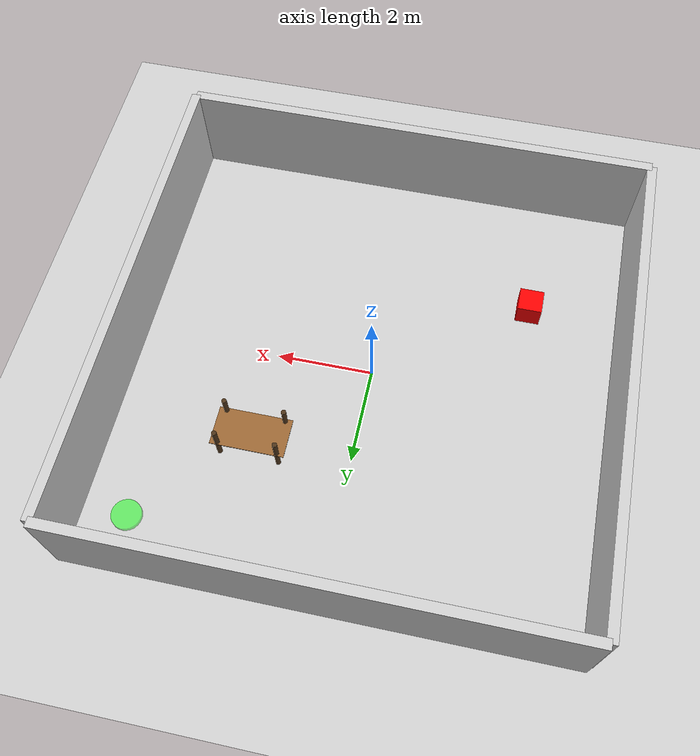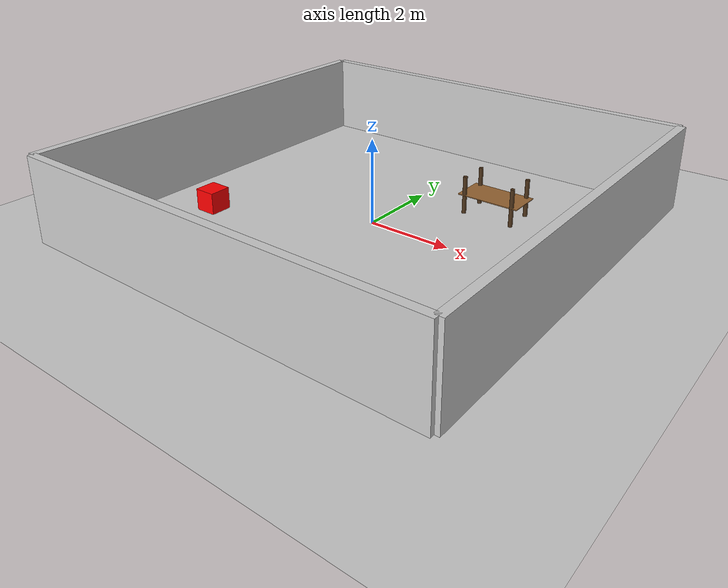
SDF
<?xml version="1.0" ?>
<sdf version="1.7">
  <world name="simple_office">
    <!-- Include default environment elements -->
    <include>
      <uri>model://ground_plane</uri>
    </include>
    <include>
      <uri>model://sun</uri>
    </include>

    <!-- Walls -->
    <model name="wall_1">
      <pose>0 5 1 0 0 0</pose>
      <link name="link">
        <collision name="collision">
          <geometry>
            <box>
              <size>10 0.2 2</size>
            </box>
          </geometry>
        </collision>
        <visual name="visual">
          <geometry>
            <box>
              <size>10 0.2 2</size>
            </box>
          </geometry>
          <material>
            <ambient>0.8 0.8 0.8 1</ambient>
            <diffuse>0.8 0.8 0.8 1</diffuse>
          </material>
        </visual>
      </link>
    </model>

    <model name="wall_2">
      <pose>5 0 1 0 0 1.5707</pose>
      <link name="link">
        <collision name="collision">
          <geometry>
            <box>
              <size>10 0.2 2</size>
            </box>
          </geometry>
        </collision>
        <visual name="visual">
          <geometry>
            <box>
              <size>10 0.2 2</size>
            </box>
          </geometry>
          <material>
            <ambient>0.8 0.8 0.8 1</ambient>
            <diffuse>0.8 0.8 0.8 1</diffuse>
          </material>
        </visual>
      </link>
    </model>

    <model name="wall_3">
      <pose>0 -5 1 0 0 0</pose>
      <link name="link">
        <collision name="collision">
          <geometry>
            <box>
              <size>10 0.2 2</size>
            </box>
          </geometry>
        </collision>
        <visual name="visual">
          <geometry>
            <box>
              <size>10 0.2 2</size>
            </box>
          </geometry>
          <material>
            <ambient>0.8 0.8 0.8 1</ambient>
            <diffuse>0.8 0.8 0.8 1</diffuse>
          </material>
        </visual>
      </link>
    </model>

    <model name="wall_4">
      <pose>-5 0 1 0 0 1.5707</pose>
      <link name="link">
        <collision name="collision">
          <geometry>
            <box>
              <size>10 0.2 2</size>
            </box>
          </geometry>
        </collision>
        <visual name="visual">
          <geometry>
            <box>
              <size>10 0.2 2</size>
            </box>
          </geometry>
          <material>
            <ambient>0.8 0.8 0.8 1</ambient>
            <diffuse>0.8 0.8 0.8 1</diffuse>
          </material>
        </visual>
      </link>
    </model>

    <!-- Furniture: Table -->
    <model name="table">
      <pose>2 2 0.5 0 0 0</pose>
      <link name="table_top">
        <collision name="collision">
          <geometry>
            <box>
              <size>1.5 0.8 0.02</size>
            </box>
          </geometry>
        </collision>
        <visual name="visual">
          <geometry>
            <box>
              <size>1.5 0.8 0.02</size>
            </box>
          </geometry>
          <material>
            <ambient>0.6 0.4 0.2 1</ambient>
            <diffuse>0.6 0.4 0.2 1</diffuse>
          </material>
        </visual>
      </link>
      <link name="leg_1">
        <pose>-0.6 -0.35 0 0 0 0</pose>
        <collision name="collision">
          <geometry>
            <cylinder>
              <radius>0.05</radius>
              <length>0.9</length>
            </cylinder>
          </geometry>
        </collision>
        <visual name="visual">
          <geometry>
            <cylinder>
              <radius>0.05</radius>
              <length>0.9</length>
            </cylinder>
          </geometry>
          <material>
            <ambient>0.3 0.2 0.1 1</ambient>
            <diffuse>0.3 0.2 0.1 1</diffuse>
          </material>
        </visual>
      </link>
      <link name="leg_2">
        <pose>-0.6 0.35 0 0 0 0</pose>
        <collision name="collision">
          <geometry>
            <cylinder>
              <radius>0.05</radius>
              <length>0.9</length>
            </cylinder>
          </geometry>
        </collision>
        <visual name="visual">
          <geometry>
            <cylinder>
              <radius>0.05</radius>
              <length>0.9</length>
            </cylinder>
          </geometry>
          <material>
            <ambient>0.3 0.2 0.1 1</ambient>
            <diffuse>0.3 0.2 0.1 1</diffuse>
          </material>
        </visual>
      </link>
      <link name="leg_3">
        <pose>0.6 -0.35 0 0 0 0</pose>
        <collision name="collision">
          <geometry>
            <cylinder>
              <radius>0.05</radius>
              <length>0.9</length>
            </cylinder>
          </geometry>
        </collision>
        <visual name="visual">
          <geometry>
            <cylinder>
              <radius>0.05</radius>
              <length>0.9</length>
            </cylinder>
          </geometry>
          <material>
            <ambient>0.3 0.2 0.1 1</ambient>
            <diffuse>0.3 0.2 0.1 1</diffuse>
          </material>
        </visual>
      </link>
      <link name="leg_4">
        <pose>0.6 0.35 0 0 0 0</pose>
        <collision name="collision">
          <geometry>
            <cylinder>
              <radius>0.05</radius>
              <length>0.9</length>
            </cylinder>
          </geometry>
        </collision>
        <visual name="visual">
          <geometry>
            <cylinder>
              <radius>0.05</radius>
              <length>0.9</length>
            </cylinder>
          </geometry>
          <material>
            <ambient>0.3 0.2 0.1 1</ambient>
            <diffuse>0.3 0.2 0.1 1</diffuse>
          </material>
        </visual>
      </link>
      <joint name="table_top_to_leg_1" type="fixed">
        <parent>table_top</parent>
        <child>leg_1</child>
      </joint>
      <joint name="table_top_to_leg_2" type="fixed">
        <parent>table_top</parent>
        <child>leg_2</child>
      </joint>
      <joint name="table_top_to_leg_3" type="fixed">
        <parent>table_top</parent>
        <child>leg_3</child>
      </joint>
      <joint name="table_top_to_leg_4" type="fixed">
        <parent>table_top</parent>
        <child>leg_4</child>
      </joint>
    </model>

    <!-- Obstacles: Boxes -->
    <model name="obstacle_1">
      <pose>-3 -2 0.5 0 0 0</pose>
      <link name="link">
        <collision name="collision">
          <geometry>
            <box>
              <size>0.5 0.5 0.5</size>
            </box>
          </geometry>
        </collision>
        <visual name="visual">
          <geometry>
            <box>
              <size>0.5 0.5 0.5</size>
            </box>
          </geometry>
          <material>
            <ambient>1 0 0 1</ambient>
            <diffuse>1 0 0 1</diffuse>
          </material>
        </visual>
      </link>
    </model>

    <!-- Navigation goal marker -->
    <model name="goal_marker">
      <pose>4 4 0.05 0 0 0</pose>
      <link name="link">
        <collision name="collision">
          <geometry>
            <cylinder>
              <radius>0.3</radius>
              <length>0.1</length>
            </cylinder>
          </geometry>
        </collision>
        <visual name="visual">
          <geometry>
            <cylinder>
              <radius>0.3</radius>
              <length>0.1</length>
            </cylinder>
          </geometry>
          <material>
            <ambient>0 1 0 0.5</ambient>
            <diffuse>0 1 0 0.5</diffuse>
          </material>
        </visual>
      </link>
    </model>

    <!-- Physics configuration -->
    <physics type="ode">
      <max_step_size>0.001</max_step_size>
      <real_time_factor>1.0</real_time_factor>
      <real_time_update_rate>1000</real_time_update_rate>
      <gravity>0 0 -9.8</gravity>
    </physics>
  </world>
</sdf>
